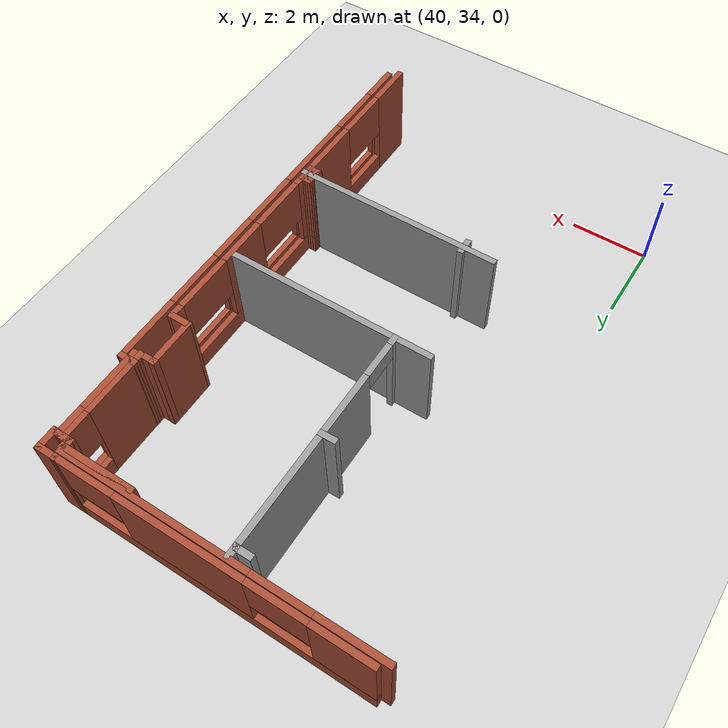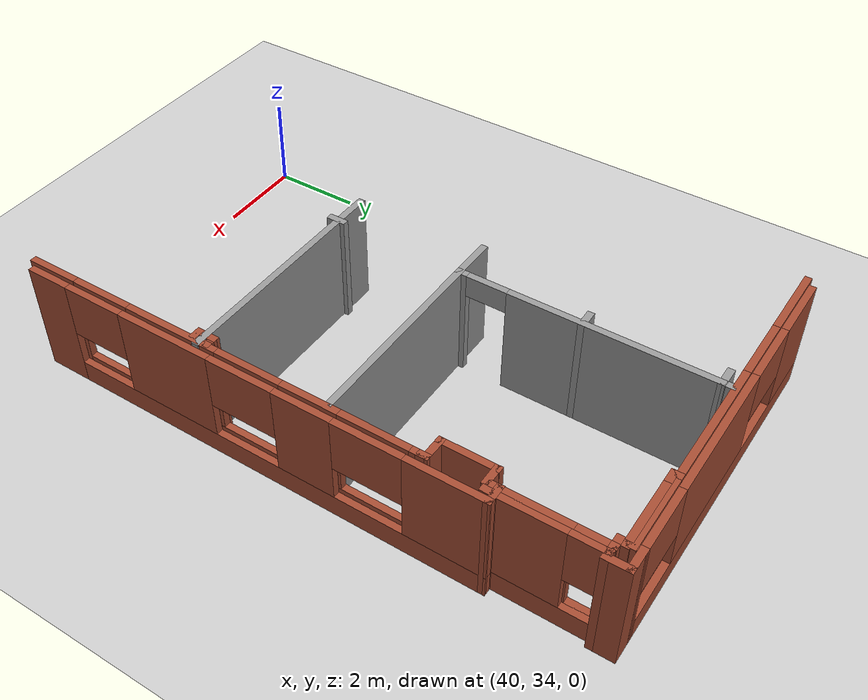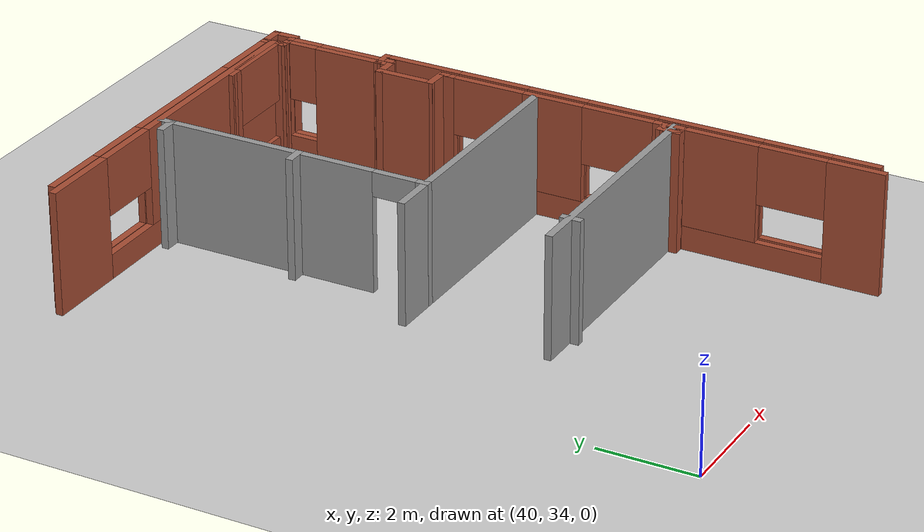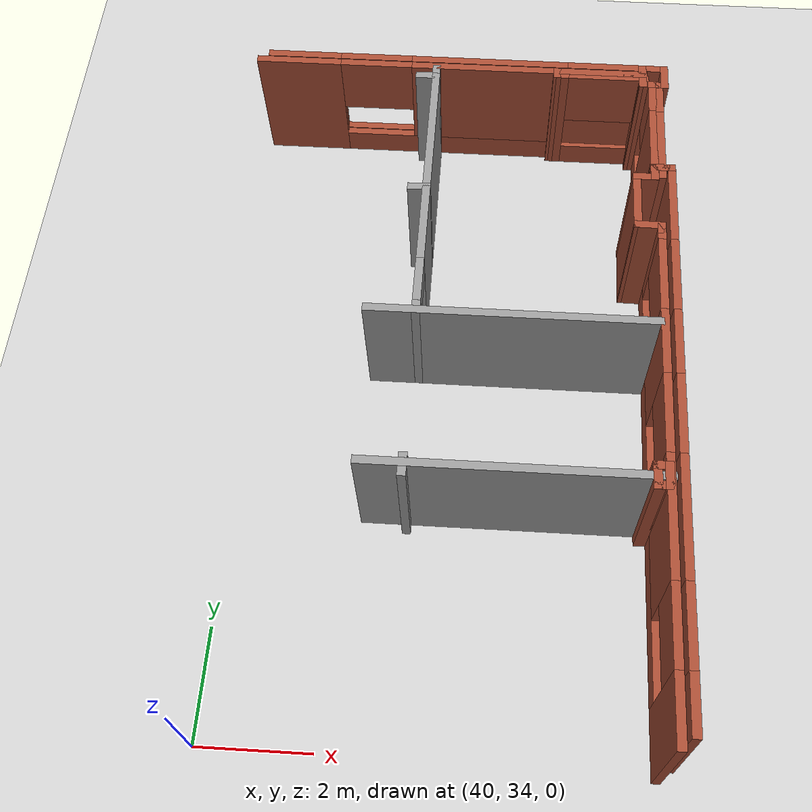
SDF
<sdf version="1.6">
 <world name="default">
  <model name="ground_plane">
   <static>1</static>
   <link name="link">
    <collision name="collision">
     <geometry><plane><normal>0 0 1</normal><size>100 100</size></plane></geometry>
     <surface><friction><ode><mu>100</mu><mu2>50</mu2></ode></friction></surface>
    </collision>
    <visual name="visual">
     <cast_shadows>0</cast_shadows>
     <geometry><plane><normal>0 0 1</normal><size>100 100</size></plane></geometry>
     <material>
      <script><uri>file://media/materials/scripts/gazebo.material</uri><name>Gazebo/Grey</name></script>
     </material>
    </visual>
   </link>
  </model>
  <model name="CVSSP">
   <pose>23.8714 24.094 0 0 -0 0</pose>
   <link name="Wall_246">
    <pose>23.6539 14.3878 0 0 -0 1.5708</pose>
    <visual name="Wall_246_Visual_0">
     <pose>-4.04048 0 1.25 0 -0 0</pose>
     <geometry><box><size>1.16905 0.15 2.5</size></box></geometry>
     <material>
      <script><uri>file://media/materials/scripts/gazebo.material</uri><name>Gazebo/Bricks</name></script>
      <ambient>1 1 1 1</ambient>
     </material>
    </visual>
    <collision name="Wall_246_Collision_0">
     <geometry><box><size>1.16905 0.15 2.5</size></box></geometry>
     <pose>-4.04048 0 1.25 0 -0 0</pose>
    </collision>
    <visual name="Wall_246_Visual_1">
     <pose>0.584524 0 0.25 0 -0 0</pose>
     <geometry><box><size>8.08095 0.15 0.5</size></box></geometry>
     <material>
      <script><uri>file://media/materials/scripts/gazebo.material</uri><name>Gazebo/Bricks</name></script>
      <ambient>1 1 1 1</ambient>
     </material>
    </visual>
    <collision name="Wall_246_Collision_1">
     <geometry><box><size>8.08095 0.15 0.5</size></box></geometry>
     <pose>0.584524 0 0.25 0 -0 0</pose>
    </collision>
    <visual name="Wall_246_Visual_2">
     <pose>-0.997265 0 1.5 0 -0 0</pose>
     <geometry><box><size>2.17318 0.15 2</size></box></geometry>
     <material>
      <script><uri>file://media/materials/scripts/gazebo.material</uri><name>Gazebo/Bricks</name></script>
      <ambient>1 1 1 1</ambient>
     </material>
    </visual>
    <collision name="Wall_246_Collision_2">
     <geometry><box><size>2.17318 0.15 2</size></box></geometry>
     <pose>-0.997265 0 1.5 0 -0 0</pose>
    </collision>
    <visual name="Wall_246_Visual_3">
     <pose>2.21429 0 1.5 0 -0 0</pose>
     <geometry><box><size>1.28036 0.15 2</size></box></geometry>
     <material>
      <script><uri>file://media/materials/scripts/gazebo.material</uri><name>Gazebo/Bricks</name></script>
      <ambient>1 1 1 1</ambient>
     </material>
    </visual>
    <collision name="Wall_246_Collision_3">
     <geometry><box><size>1.28036 0.15 2</size></box></geometry>
     <pose>2.21429 0 1.5 0 -0 0</pose>
    </collision>
    <visual name="Wall_246_Visual_4">
     <pose>4.48646 0 1.5 0 -0 0</pose>
     <geometry><box><size>0.27708 0.15 2</size></box></geometry>
     <material>
      <script><uri>file://media/materials/scripts/gazebo.material</uri><name>Gazebo/Bricks</name></script>
      <ambient>1 1 1 1</ambient>
     </material>
    </visual>
    <collision name="Wall_246_Collision_4">
     <geometry><box><size>0.27708 0.15 2</size></box></geometry>
     <pose>4.48646 0 1.5 0 -0 0</pose>
    </collision>
    <visual name="Wall_246_Visual_5">
     <pose>-2.7699 0 1.9 0 -0 0</pose>
     <geometry><box><size>1.3721 0.15 1.2</size></box></geometry>
     <material>
      <script><uri>file://media/materials/scripts/gazebo.material</uri><name>Gazebo/Bricks</name></script>
      <ambient>1 1 1 1</ambient>
     </material>
    </visual>
    <collision name="Wall_246_Collision_5">
     <geometry><box><size>1.3721 0.15 1.2</size></box></geometry>
     <pose>-2.7699 0 1.9 0 -0 0</pose>
    </collision>
    <visual name="Wall_246_Visual_6">
     <pose>0.831717 0 1.9 0 -0 0</pose>
     <geometry><box><size>1.48478 0.15 1.2</size></box></geometry>
     <material>
      <script><uri>file://media/materials/scripts/gazebo.material</uri><name>Gazebo/Bricks</name></script>
      <ambient>1 1 1 1</ambient>
     </material>
    </visual>
    <collision name="Wall_246_Collision_6">
     <geometry><box><size>1.48478 0.15 1.2</size></box></geometry>
     <pose>0.831717 0 1.9 0 -0 0</pose>
    </collision>
    <visual name="Wall_246_Visual_7">
     <pose>3.60119 0 1.9 0 -0 0</pose>
     <geometry><box><size>1.49345 0.15 1.2</size></box></geometry>
     <material>
      <script><uri>file://media/materials/scripts/gazebo.material</uri><name>Gazebo/Bricks</name></script>
      <ambient>1 1 1 1</ambient>
     </material>
    </visual>
    <collision name="Wall_246_Collision_7">
     <geometry><box><size>1.49345 0.15 1.2</size></box></geometry>
     <pose>3.60119 0 1.9 0 -0 0</pose>
    </collision>
   </link>
   <link name="Wall_248">
    <pose>23.8767 15.2054 0 0 -0 1.57026</pose>
    <visual name="Wall_248_Visual_0">
     <pose>-4.76522 0 1.25 0 -0 0</pose>
     <geometry><box><size>0.983202 0.15 2.5</size></box></geometry>
     <material>
      <script><uri>file://media/materials/scripts/gazebo.material</uri><name>Gazebo/Bricks</name></script>
      <ambient>1 1 1 1</ambient>
     </material>
    </visual>
    <collision name="Wall_248_Collision_0">
     <geometry><box><size>0.983202 0.15 2.5</size></box></geometry>
     <pose>-4.76522 0 1.25 0 -0 0</pose>
    </collision>
    <visual name="Wall_248_Visual_1">
     <pose>0.491601 0 0.25 0 -0 0</pose>
     <geometry><box><size>9.53043 0.15 0.5</size></box></geometry>
     <material>
      <script><uri>file://media/materials/scripts/gazebo.material</uri><name>Gazebo/Bricks</name></script>
      <ambient>1 1 1 1</ambient>
     </material>
    </visual>
    <collision name="Wall_248_Collision_1">
     <geometry><box><size>9.53043 0.15 0.5</size></box></geometry>
     <pose>0.491601 0 0.25 0 -0 0</pose>
    </collision>
    <visual name="Wall_248_Visual_2">
     <pose>-1.81497 0 1.5 0 -0 0</pose>
     <geometry><box><size>2.15587 0.15 2</size></box></geometry>
     <material>
      <script><uri>file://media/materials/scripts/gazebo.material</uri><name>Gazebo/Bricks</name></script>
      <ambient>1 1 1 1</ambient>
     </material>
    </visual>
    <collision name="Wall_248_Collision_2">
     <geometry><box><size>2.15587 0.15 2</size></box></geometry>
     <pose>-1.81497 0 1.5 0 -0 0</pose>
    </collision>
    <visual name="Wall_248_Visual_3">
     <pose>1.3966 0 1.5 0 -0 0</pose>
     <geometry><box><size>1.28045 0.15 2</size></box></geometry>
     <material>
      <script><uri>file://media/materials/scripts/gazebo.material</uri><name>Gazebo/Bricks</name></script>
      <ambient>1 1 1 1</ambient>
     </material>
    </visual>
    <collision name="Wall_248_Collision_3">
     <geometry><box><size>1.28045 0.15 2</size></box></geometry>
     <pose>1.3966 0 1.5 0 -0 0</pose>
    </collision>
    <visual name="Wall_248_Visual_4">
     <pose>4.39355 0 1.5 0 -0 0</pose>
     <geometry><box><size>1.72654 0.15 2</size></box></geometry>
     <material>
      <script><uri>file://media/materials/scripts/gazebo.material</uri><name>Gazebo/Bricks</name></script>
      <ambient>1 1 1 1</ambient>
     </material>
    </visual>
    <collision name="Wall_248_Collision_4">
     <geometry><box><size>1.72654 0.15 2</size></box></geometry>
     <pose>4.39355 0 1.5 0 -0 0</pose>
    </collision>
    <visual name="Wall_248_Visual_5">
     <pose>-3.58326 0 1.9 0 -0 0</pose>
     <geometry><box><size>1.38071 0.15 1.2</size></box></geometry>
     <material>
      <script><uri>file://media/materials/scripts/gazebo.material</uri><name>Gazebo/Bricks</name></script>
      <ambient>1 1 1 1</ambient>
     </material>
    </visual>
    <collision name="Wall_248_Collision_5">
     <geometry><box><size>1.38071 0.15 1.2</size></box></geometry>
     <pose>-3.58326 0 1.9 0 -0 0</pose>
    </collision>
    <visual name="Wall_248_Visual_6">
     <pose>0.009668 0 1.9 0 -0 0</pose>
     <geometry><box><size>1.49341 0.15 1.2</size></box></geometry>
     <material>
      <script><uri>file://media/materials/scripts/gazebo.material</uri><name>Gazebo/Bricks</name></script>
      <ambient>1 1 1 1</ambient>
     </material>
    </visual>
    <collision name="Wall_248_Collision_6">
     <geometry><box><size>1.49341 0.15 1.2</size></box></geometry>
     <pose>0.009668 0 1.9 0 -0 0</pose>
    </collision>
    <visual name="Wall_248_Visual_7">
     <pose>2.78355 0 1.9 0 -0 0</pose>
     <geometry><box><size>1.49345 0.15 1.2</size></box></geometry>
     <material>
      <script><uri>file://media/materials/scripts/gazebo.material</uri><name>Gazebo/Bricks</name></script>
      <ambient>1 1 1 1</ambient>
     </material>
    </visual>
    <collision name="Wall_248_Collision_7">
     <geometry><box><size>1.49345 0.15 1.2</size></box></geometry>
     <pose>2.78355 0 1.9 0 -0 0</pose>
    </collision>
   </link>
   <link name="Wall_249">
    <collision name="Wall_249_Collision">
     <geometry><box><size>0.472183 0.15 2.5</size></box></geometry>
     <pose>0 0 1.25 0 -0 0</pose>
    </collision>
    <visual name="Wall_249_Visual">
     <pose>0 0 1.25 0 -0 0</pose>
     <geometry><box><size>0.472183 0.15 2.5</size></box></geometry>
     <material>
      <script><uri>file://media/materials/scripts/gazebo.material</uri><name>Gazebo/Bricks</name></script>
      <ambient>1 1 1 1</ambient>
     </material>
    </visual>
    <pose>23.7184 20.3872 0 0 -0 3.14159</pose>
   </link>
   <link name="Wall_251">
    <collision name="Wall_251_Collision">
     <geometry><box><size>0.25 0.15 2.5</size></box></geometry>
     <pose>0 0 1.25 0 -0 0</pose>
    </collision>
    <visual name="Wall_251_Visual">
     <pose>0 0 1.25 0 -0 0</pose>
     <geometry><box><size>0.25 0.15 2.5</size></box></geometry>
     <material>
      <script><uri>file://media/materials/scripts/gazebo.material</uri><name>Gazebo/Bricks</name></script>
      <ambient>1 1 1 1</ambient>
     </material>
    </visual>
    <pose>23.6539 18.9878 0 0 -0 1.5708</pose>
   </link>
   <link name="Wall_252">
    <collision name="Wall_252_Collision">
     <geometry><box><size>0.578729 0.15 2.5</size></box></geometry>
     <pose>0 0 1.25 0 -0 0</pose>
    </collision>
    <visual name="Wall_252_Visual">
     <pose>0 0 1.25 0 -0 0</pose>
     <geometry><box><size>0.578729 0.15 2.5</size></box></geometry>
     <material>
      <script><uri>file://media/materials/scripts/gazebo.material</uri><name>Gazebo/Bricks</name></script>
      <ambient>1 1 1 1</ambient>
     </material>
    </visual>
    <pose>23.4395 19.0409 0 0 -0 3.12698</pose>
   </link>
   <link name="Wall_253">
    <collision name="Wall_253_Collision">
     <geometry><box><size>1.26972 0.15 2.5</size></box></geometry>
     <pose>0 0 1.25 0 -0 0</pose>
    </collision>
    <visual name="Wall_253_Visual">
     <pose>0 0 1.25 0 -0 0</pose>
     <geometry><box><size>1.26972 0.15 2.5</size></box></geometry>
     <material>
      <script><uri>file://media/materials/scripts/gazebo.material</uri><name>Gazebo/Bricks</name></script>
      <ambient>1 1 1 1</ambient>
     </material>
    </visual>
    <pose>23.2252 19.6039 0 0 -0 1.5708</pose>
   </link>
   <link name="Wall_254">
    <collision name="Wall_254_Collision">
     <geometry><box><size>0.488706 0.15 2.5</size></box></geometry>
     <pose>0 0 1.25 0 -0 0</pose>
    </collision>
    <visual name="Wall_254_Visual">
     <pose>0 0 1.25 0 -0 0</pose>
     <geometry><box><size>0.488706 0.15 2.5</size></box></geometry>
     <material>
      <script><uri>file://media/materials/scripts/gazebo.material</uri><name>Gazebo/Bricks</name></script>
      <ambient>1 1 1 1</ambient>
     </material>
    </visual>
    <pose>23.3945 20.1571 0 0 0 -0.000206</pose>
   </link>
   <link name="Wall_256">
    <collision name="Wall_256_Collision">
     <geometry><box><size>0.373652 0.15 2.5</size></box></geometry>
     <pose>0 0 1.25 0 -0 0</pose>
    </collision>
    <visual name="Wall_256_Visual">
     <pose>0 0 1.25 0 -0 0</pose>
     <geometry><box><size>0.373652 0.15 2.5</size></box></geometry>
     <material>
      <script><uri>file://media/materials/scripts/gazebo.material</uri><name>Gazebo/Bricks</name></script>
      <ambient>1 1 1 1</ambient>
     </material>
    </visual>
    <pose>23.5606 20.2755 0 0 -0 1.6002</pose>
   </link>
   <link name="Wall_260">
    <pose>23.5639 21.3143 0 0 -0 1.5708</pose>
    <visual name="Wall_260_Visual_0">
     <pose>-0.373491 0 1.25 0 -0 0</pose>
     <geometry><box><size>1.70433 0.15 2.5</size></box></geometry>
     <material>
      <script><uri>file://media/materials/scripts/gazebo.material</uri><name>Gazebo/Bricks</name></script>
      <ambient>1 1 1 1</ambient>
     </material>
    </visual>
    <collision name="Wall_260_Collision_0">
     <geometry><box><size>1.70433 0.15 2.5</size></box></geometry>
     <pose>-0.373491 0 1.25 0 -0 0</pose>
    </collision>
    <visual name="Wall_260_Visual_1">
     <pose>0.852167 0 0.25 0 -0 0</pose>
     <geometry><box><size>0.746982 0.15 0.5</size></box></geometry>
     <material>
      <script><uri>file://media/materials/scripts/gazebo.material</uri><name>Gazebo/Bricks</name></script>
      <ambient>1 1 1 1</ambient>
     </material>
    </visual>
    <collision name="Wall_260_Collision_1">
     <geometry><box><size>0.746982 0.15 0.5</size></box></geometry>
     <pose>0.852167 0 0.25 0 -0 0</pose>
    </collision>
    <visual name="Wall_260_Visual_2">
     <pose>1.14815 0 1.5 0 -0 0</pose>
     <geometry><box><size>0.155018 0.15 2</size></box></geometry>
     <material>
      <script><uri>file://media/materials/scripts/gazebo.material</uri><name>Gazebo/Bricks</name></script>
      <ambient>1 1 1 1</ambient>
     </material>
    </visual>
    <collision name="Wall_260_Collision_2">
     <geometry><box><size>0.155018 0.15 2</size></box></geometry>
     <pose>1.14815 0 1.5 0 -0 0</pose>
    </collision>
    <visual name="Wall_260_Visual_3">
     <pose>0.774658 0 1.9 0 -0 0</pose>
     <geometry><box><size>0.591964 0.15 1.2</size></box></geometry>
     <material>
      <script><uri>file://media/materials/scripts/gazebo.material</uri><name>Gazebo/Bricks</name></script>
      <ambient>1 1 1 1</ambient>
     </material>
    </visual>
    <collision name="Wall_260_Collision_3">
     <geometry><box><size>0.591964 0.15 1.2</size></box></geometry>
     <pose>0.774658 0 1.9 0 -0 0</pose>
    </collision>
   </link>
   <link name="Wall_261">
    <collision name="Wall_261_Collision">
     <geometry><box><size>0.320954 0.15 2.5</size></box></geometry>
     <pose>0 0 1.25 0 -0 0</pose>
    </collision>
    <visual name="Wall_261_Visual">
     <pose>0 0 1.25 0 -0 0</pose>
     <geometry><box><size>0.320954 0.15 2.5</size></box></geometry>
     <material>
      <script><uri>file://media/materials/scripts/gazebo.material</uri><name>Gazebo/Bricks</name></script>
      <ambient>1 1 1 1</ambient>
     </material>
    </visual>
    <pose>23.4784 22.465 0 0 -0 3.14159</pose>
   </link>
   <link name="Wall_262">
    <collision name="Wall_262_Collision">
     <geometry><box><size>0.564287 0.15 2.5</size></box></geometry>
     <pose>0 0 1.25 0 -0 0</pose>
    </collision>
    <visual name="Wall_262_Visual">
     <pose>0 0 1.25 0 -0 0</pose>
     <geometry><box><size>0.564287 0.15 2.5</size></box></geometry>
     <material>
      <script><uri>file://media/materials/scripts/gazebo.material</uri><name>Gazebo/Bricks</name></script>
      <ambient>1 1 1 1</ambient>
     </material>
    </visual>
    <pose>23.3897 22.6721 0 0 -0 1.58667</pose>
   </link>
   <link name="Wall_263">
    <collision name="Wall_263_Collision">
     <geometry><box><size>0.577386 0.15 2.5</size></box></geometry>
     <pose>0 0 1.25 0 -0 0</pose>
    </collision>
    <visual name="Wall_263_Visual">
     <pose>0 0 1.25 0 -0 0</pose>
     <geometry><box><size>0.577386 0.15 2.5</size></box></geometry>
     <material>
      <script><uri>file://media/materials/scripts/gazebo.material</uri><name>Gazebo/Bricks</name></script>
      <ambient>1 1 1 1</ambient>
     </material>
    </visual>
    <pose>23.6001 22.8792 0 0 -0 0</pose>
   </link>
   <link name="Wall_264">
    <collision name="Wall_264_Collision">
     <geometry><box><size>0.577386 0.15 2.5</size></box></geometry>
     <pose>0 0 1.25 0 -0 0</pose>
    </collision>
    <visual name="Wall_264_Visual">
     <pose>0 0 1.25 0 -0 0</pose>
     <geometry><box><size>0.577386 0.15 2.5</size></box></geometry>
     <material>
      <script><uri>file://media/materials/scripts/gazebo.material</uri><name>Gazebo/Bricks</name></script>
      <ambient>1 1 1 1</ambient>
     </material>
    </visual>
    <pose>23.8138 22.6655 0 0 0 -1.5708</pose>
   </link>
   <link name="Wall_265">
    <collision name="Wall_265_Collision">
     <geometry><box><size>0.262549 0.15 2.5</size></box></geometry>
     <pose>0 0 1.25 0 -0 0</pose>
    </collision>
    <visual name="Wall_265_Visual">
     <pose>0 0 1.25 0 -0 0</pose>
     <geometry><box><size>0.262549 0.15 2.5</size></box></geometry>
     <material>
      <script><uri>file://media/materials/scripts/gazebo.material</uri><name>Gazebo/Bricks</name></script>
      <ambient>1 1 1 1</ambient>
     </material>
    </visual>
    <pose>23.7579 22.4518 0 0 -0 3.14159</pose>
   </link>
   <link name="Wall_266">
    <pose>23.702 21.3275 0 0 0 -1.5708</pose>
    <visual name="Wall_266_Visual_0">
     <pose>-1.13276 0 1.25 0 -0 0</pose>
     <geometry><box><size>0.133194 0.15 2.5</size></box></geometry>
     <material>
      <script><uri>file://media/materials/scripts/gazebo.material</uri><name>Gazebo/Bricks</name></script>
      <ambient>1 1 1 1</ambient>
     </material>
    </visual>
    <collision name="Wall_266_Collision_0">
     <geometry><box><size>0.133194 0.15 2.5</size></box></geometry>
     <pose>-1.13276 0 1.25 0 -0 0</pose>
    </collision>
    <visual name="Wall_266_Visual_1">
     <pose>0.066597 0 0.25 0 -0 0</pose>
     <geometry><box><size>2.26551 0.15 0.5</size></box></geometry>
     <material>
      <script><uri>file://media/materials/scripts/gazebo.material</uri><name>Gazebo/Bricks</name></script>
      <ambient>1 1 1 1</ambient>
     </material>
    </visual>
    <collision name="Wall_266_Collision_1">
     <geometry><box><size>2.26551 0.15 0.5</size></box></geometry>
     <pose>0.066597 0 0.25 0 -0 0</pose>
    </collision>
    <visual name="Wall_266_Visual_2">
     <pose>0.384249 0 1.5 0 -0 0</pose>
     <geometry><box><size>1.63021 0.15 2</size></box></geometry>
     <material>
      <script><uri>file://media/materials/scripts/gazebo.material</uri><name>Gazebo/Bricks</name></script>
      <ambient>1 1 1 1</ambient>
     </material>
    </visual>
    <collision name="Wall_266_Collision_2">
     <geometry><box><size>1.63021 0.15 2</size></box></geometry>
     <pose>0.384249 0 1.5 0 -0 0</pose>
    </collision>
    <visual name="Wall_266_Visual_3">
     <pose>-0.748507 0 1.9 0 -0 0</pose>
     <geometry><box><size>0.635305 0.15 1.2</size></box></geometry>
     <material>
      <script><uri>file://media/materials/scripts/gazebo.material</uri><name>Gazebo/Bricks</name></script>
      <ambient>1 1 1 1</ambient>
     </material>
    </visual>
    <collision name="Wall_266_Collision_3">
     <geometry><box><size>0.635305 0.15 1.2</size></box></geometry>
     <pose>-0.748507 0 1.9 0 -0 0</pose>
    </collision>
   </link>
   <link name="Wall_268">
    <pose>19.7114 22.8792 0 0 -0 3.14159</pose>
    <visual name="Wall_268_Visual_0">
     <pose>-3.69493 0 1.25 0 -0 0</pose>
     <geometry><box><size>0.110141 0.15 2.5</size></box></geometry>
     <material>
      <script><uri>file://media/materials/scripts/gazebo.material</uri><name>Gazebo/Bricks</name></script>
      <ambient>1 1 1 1</ambient>
     </material>
    </visual>
    <collision name="Wall_268_Collision_0">
     <geometry><box><size>0.110141 0.15 2.5</size></box></geometry>
     <pose>-3.69493 0 1.25 0 -0 0</pose>
    </collision>
    <visual name="Wall_268_Visual_1">
     <pose>0.05507 0 0.25 0 -0 0</pose>
     <geometry><box><size>7.38986 0.15 0.5</size></box></geometry>
     <material>
      <script><uri>file://media/materials/scripts/gazebo.material</uri><name>Gazebo/Bricks</name></script>
      <ambient>1 1 1 1</ambient>
     </material>
    </visual>
    <collision name="Wall_268_Collision_1">
     <geometry><box><size>7.38986 0.15 0.5</size></box></geometry>
     <pose>0.05507 0 0.25 0 -0 0</pose>
    </collision>
    <visual name="Wall_268_Visual_2">
     <pose>-0.658919 0 1.5 0 -0 0</pose>
     <geometry><box><size>3.09633 0.15 2</size></box></geometry>
     <material>
      <script><uri>file://media/materials/scripts/gazebo.material</uri><name>Gazebo/Bricks</name></script>
      <ambient>1 1 1 1</ambient>
     </material>
    </visual>
    <collision name="Wall_268_Collision_2">
     <geometry><box><size>3.09633 0.15 2</size></box></geometry>
     <pose>-0.658919 0 1.5 0 -0 0</pose>
    </collision>
    <visual name="Wall_268_Visual_3">
     <pose>3.02537 0 1.5 0 -0 0</pose>
     <geometry><box><size>1.44926 0.15 2</size></box></geometry>
     <material>
      <script><uri>file://media/materials/scripts/gazebo.material</uri><name>Gazebo/Bricks</name></script>
      <ambient>1 1 1 1</ambient>
     </material>
    </visual>
    <collision name="Wall_268_Collision_3">
     <geometry><box><size>1.44926 0.15 2</size></box></geometry>
     <pose>3.02537 0 1.5 0 -0 0</pose>
    </collision>
    <visual name="Wall_268_Visual_4">
     <pose>-2.92347 0 1.9 0 -0 0</pose>
     <geometry><box><size>1.43278 0.15 1.2</size></box></geometry>
     <material>
      <script><uri>file://media/materials/scripts/gazebo.material</uri><name>Gazebo/Bricks</name></script>
      <ambient>1 1 1 1</ambient>
     </material>
    </visual>
    <collision name="Wall_268_Collision_4">
     <geometry><box><size>1.43278 0.15 1.2</size></box></geometry>
     <pose>-2.92347 0 1.9 0 -0 0</pose>
    </collision>
    <visual name="Wall_268_Visual_5">
     <pose>1.59499 0 1.9 0 -0 0</pose>
     <geometry><box><size>1.41149 0.15 1.2</size></box></geometry>
     <material>
      <script><uri>file://media/materials/scripts/gazebo.material</uri><name>Gazebo/Bricks</name></script>
      <ambient>1 1 1 1</ambient>
     </material>
    </visual>
    <collision name="Wall_268_Collision_5">
     <geometry><box><size>1.41149 0.15 1.2</size></box></geometry>
     <pose>1.59499 0 1.9 0 -0 0</pose>
    </collision>
   </link>
   <link name="Wall_273">
    <pose>19.6122 22.7148 0 0 -0 0</pose>
    <visual name="Wall_273_Visual_0">
     <pose>-3.02728 0 1.25 0 -0 0</pose>
     <geometry><box><size>1.67003 0.15 2.5</size></box></geometry>
     <material>
      <script><uri>file://media/materials/scripts/gazebo.material</uri><name>Gazebo/Bricks</name></script>
      <ambient>1 1 1 1</ambient>
     </material>
    </visual>
    <collision name="Wall_273_Collision_0">
     <geometry><box><size>1.67003 0.15 2.5</size></box></geometry>
     <pose>-3.02728 0 1.25 0 -0 0</pose>
    </collision>
    <visual name="Wall_273_Visual_1">
     <pose>0.835017 0 0.25 0 -0 0</pose>
     <geometry><box><size>6.05455 0.15 0.5</size></box></geometry>
     <material>
      <script><uri>file://media/materials/scripts/gazebo.material</uri><name>Gazebo/Bricks</name></script>
      <ambient>1 1 1 1</ambient>
     </material>
    </visual>
    <collision name="Wall_273_Collision_1">
     <geometry><box><size>6.05455 0.15 0.5</size></box></geometry>
     <pose>0.835017 0 0.25 0 -0 0</pose>
    </collision>
    <visual name="Wall_273_Visual_2">
     <pose>1.54076 0 1.5 0 -0 0</pose>
     <geometry><box><size>4.64306 0.15 2</size></box></geometry>
     <material>
      <script><uri>file://media/materials/scripts/gazebo.material</uri><name>Gazebo/Bricks</name></script>
      <ambient>1 1 1 1</ambient>
     </material>
    </visual>
    <collision name="Wall_273_Collision_2">
     <geometry><box><size>4.64306 0.15 2</size></box></geometry>
     <pose>1.54076 0 1.5 0 -0 0</pose>
    </collision>
    <visual name="Wall_273_Visual_3">
     <pose>-1.48652 0 1.9 0 -0 0</pose>
     <geometry><box><size>1.41149 0.15 1.2</size></box></geometry>
     <material>
      <script><uri>file://media/materials/scripts/gazebo.material</uri><name>Gazebo/Bricks</name></script>
      <ambient>1 1 1 1</ambient>
     </material>
    </visual>
    <collision name="Wall_273_Collision_3">
     <geometry><box><size>1.41149 0.15 1.2</size></box></geometry>
     <pose>-1.48652 0 1.9 0 -0 0</pose>
    </collision>
   </link>
   <link name="Wall_275">
    <collision name="Wall_275_Collision">
     <geometry><box><size>0.25 0.15 2.5</size></box></geometry>
     <pose>0 0 1.25 0 -0 0</pose>
    </collision>
    <visual name="Wall_275_Visual">
     <pose>0 0 1.25 0 -0 0</pose>
     <geometry><box><size>0.25 0.15 2.5</size></box></geometry>
     <material>
      <script><uri>file://media/materials/scripts/gazebo.material</uri><name>Gazebo/Bricks</name></script>
      <ambient>1 1 1 1</ambient>
     </material>
    </visual>
    <pose>21.7097 22.6648 0 0 0 -1.5708</pose>
   </link>
   <link name="Wall_276">
    <pose>22.5711 22.6155 0 0 -0 0.000797</pose>
    <visual name="Wall_276_Visual_0">
     <pose>-0.783646 0 1.25 0 -0 0</pose>
     <geometry><box><size>0.3054 0.15 2.5</size></box></geometry>
     <material>
      <script><uri>file://media/materials/scripts/gazebo.material</uri><name>Gazebo/Bricks</name></script>
      <ambient>1 1 1 1</ambient>
     </material>
    </visual>
    <collision name="Wall_276_Collision_0">
     <geometry><box><size>0.3054 0.15 2.5</size></box></geometry>
     <pose>-0.783646 0 1.25 0 -0 0</pose>
    </collision>
    <visual name="Wall_276_Visual_1">
     <pose>0.1527 0 0.25 0 -0 0</pose>
     <geometry><box><size>1.56729 0.15 0.5</size></box></geometry>
     <material>
      <script><uri>file://media/materials/scripts/gazebo.material</uri><name>Gazebo/Bricks</name></script>
      <ambient>1 1 1 1</ambient>
     </material>
    </visual>
    <collision name="Wall_276_Collision_1">
     <geometry><box><size>1.56729 0.15 0.5</size></box></geometry>
     <pose>0.1527 0 0.25 0 -0 0</pose>
    </collision>
    <visual name="Wall_276_Visual_2">
     <pose>0.860427 0 1.5 0 -0 0</pose>
     <geometry><box><size>0.15184 0.15 2</size></box></geometry>
     <material>
      <script><uri>file://media/materials/scripts/gazebo.material</uri><name>Gazebo/Bricks</name></script>
      <ambient>1 1 1 1</ambient>
     </material>
    </visual>
    <collision name="Wall_276_Collision_2">
     <geometry><box><size>0.15184 0.15 2</size></box></geometry>
     <pose>0.860427 0 1.5 0 -0 0</pose>
    </collision>
    <visual name="Wall_276_Visual_3">
     <pose>0.07678 0 1.9 0 -0 0</pose>
     <geometry><box><size>1.41545 0.15 1.2</size></box></geometry>
     <material>
      <script><uri>file://media/materials/scripts/gazebo.material</uri><name>Gazebo/Bricks</name></script>
      <ambient>1 1 1 1</ambient>
     </material>
    </visual>
    <collision name="Wall_276_Collision_3">
     <geometry><box><size>1.41545 0.15 1.2</size></box></geometry>
     <pose>0.07678 0 1.9 0 -0 0</pose>
    </collision>
   </link>
   <link name="Wall_343">
    <collision name="Wall_343_Collision">
     <geometry><box><size>5.25 0.15 2.5</size></box></geometry>
     <pose>0 0 1.25 0 -0 0</pose>
    </collision>
    <visual name="Wall_343_Visual">
     <pose>0 0 1.25 0 -0 0</pose>
     <geometry><box><size>5.25 0.15 2.5</size></box></geometry>
     <material>
      <script><uri>file://media/materials/scripts/gazebo.material</uri><name>Gazebo/Grey</name></script>
      <ambient>0.588235 0.588235 0.588235 1</ambient>
     </material>
    </visual>
    <pose>21.0172 16.981 0 0 -0 0</pose>
   </link>
   <link name="Wall_345">
    <pose>19.3268 19.7148 0 0 -0 1.5708</pose>
    <visual name="Wall_345_Visual_0">
     <pose>-2.67544 0 1.25 0 -0 0</pose>
     <geometry><box><size>0.266868 0.15 2.5</size></box></geometry>
     <material>
      <script><uri>file://media/materials/scripts/gazebo.material</uri><name>Gazebo/Grey</name></script>
      <ambient>0.588235 0.588235 0.588235 1</ambient>
     </material>
    </visual>
    <collision name="Wall_345_Collision_0">
     <geometry><box><size>0.266868 0.15 2.5</size></box></geometry>
     <pose>-2.67544 0 1.25 0 -0 0</pose>
    </collision>
    <visual name="Wall_345_Visual_1">
     <pose>0.583434 0 1.25 0 -0 0</pose>
     <geometry><box><size>4.45088 0.15 2.5</size></box></geometry>
     <material>
      <script><uri>file://media/materials/scripts/gazebo.material</uri><name>Gazebo/Grey</name></script>
      <ambient>0.588235 0.588235 0.588235 1</ambient>
     </material>
    </visual>
    <collision name="Wall_345_Collision_1">
     <geometry><box><size>4.45088 0.15 2.5</size></box></geometry>
     <pose>0.583434 0 1.25 0 -0 0</pose>
    </collision>
    <visual name="Wall_345_Visual_2">
     <pose>-2.09201 0 2.25 0 -0 0</pose>
     <geometry><box><size>0.9 0.15 0.5</size></box></geometry>
     <material>
      <script><uri>file://media/materials/scripts/gazebo.material</uri><name>Gazebo/Grey</name></script>
      <ambient>0.588235 0.588235 0.588235 1</ambient>
     </material>
    </visual>
    <collision name="Wall_345_Collision_2">
     <geometry><box><size>0.9 0.15 0.5</size></box></geometry>
     <pose>-2.09201 0 2.25 0 -0 0</pose>
    </collision>
   </link>
   <link name="Wall_347">
    <collision name="Wall_347_Collision">
     <geometry><box><size>0.473042 0.15 2.5</size></box></geometry>
     <pose>0 0 1.25 0 -0 0</pose>
    </collision>
    <visual name="Wall_347_Visual">
     <pose>0 0 1.25 0 -0 0</pose>
     <geometry><box><size>0.473042 0.15 2.5</size></box></geometry>
     <material>
      <script><uri>file://media/materials/scripts/gazebo.material</uri><name>Gazebo/Grey</name></script>
      <ambient>1 1 1 1</ambient>
     </material>
    </visual>
    <pose>19.1653 22.4613 0 0 0 -3.13738</pose>
   </link>
   <link name="Wall_351">
    <collision name="Wall_351_Collision">
     <geometry><box><size>0.345897 0.15 2.5</size></box></geometry>
     <pose>0 0 1.25 0 -0 0</pose>
    </collision>
    <visual name="Wall_351_Visual">
     <pose>0 0 1.25 0 -0 0</pose>
     <geometry><box><size>0.345897 0.15 2.5</size></box></geometry>
     <material>
      <script><uri>file://media/materials/scripts/gazebo.material</uri><name>Gazebo/Grey</name></script>
      <ambient>1 1 1 1</ambient>
     </material>
    </visual>
    <pose>19.3264 22.5599 0 0 -0 1.57517</pose>
   </link>
   <link name="Wall_533">
    <collision name="Wall_533_Collision">
     <geometry><box><size>5.25 0.15 2.5</size></box></geometry>
     <pose>0 0 1.25 0 -0 0</pose>
    </collision>
    <visual name="Wall_533_Visual">
     <pose>0 0 1.25 0 -0 0</pose>
     <geometry><box><size>5.25 0.15 2.5</size></box></geometry>
     <material>
      <script><uri>file://media/materials/scripts/gazebo.material</uri><name>Gazebo/Grey</name></script>
      <ambient>0.588235 0.588235 0.588235 1</ambient>
     </material>
    </visual>
    <pose>21.1286 14.0544 0 0 -0 3.14159</pose>
   </link>
   <link name="Wall_669">
    <collision name="Wall_669_Collision">
     <geometry><box><size>0.429381 0.15 2.5</size></box></geometry>
     <pose>0 0 1.25 0 -0 0</pose>
    </collision>
    <visual name="Wall_669_Visual">
     <pose>0 0 1.25 0 -0 0</pose>
     <geometry><box><size>0.429381 0.15 2.5</size></box></geometry>
     <material>
      <script><uri>file://media/materials/scripts/gazebo.material</uri><name>Gazebo/Grey</name></script>
      <ambient>0.588235 0.588235 0.588235 1</ambient>
     </material>
    </visual>
    <pose>19.1886 19.6802 0 0 -0 0.023805</pose>
   </link>
   <link name="Wall_674">
    <collision name="Wall_674_Collision">
     <geometry><box><size>0.426562 0.15 2.5</size></box></geometry>
     <pose>0 0 1.25 0 -0 0</pose>
    </collision>
    <visual name="Wall_674_Visual">
     <pose>0 0 1.25 0 -0 0</pose>
     <geometry><box><size>0.426562 0.15 2.5</size></box></geometry>
     <material>
      <script><uri>file://media/materials/scripts/gazebo.material</uri><name>Gazebo/Grey</name></script>
      <ambient>1 1 1 1</ambient>
     </material>
    </visual>
    <pose>19.3273 14.0191 0 0 0 -1.5708</pose>
   </link>
   <link name="Wall_678">
    <collision name="Wall_678_Collision">
     <geometry><box><size>0.341089 0.15 2.5</size></box></geometry>
     <pose>0 0 1.25 0 -0 0</pose>
    </collision>
    <visual name="Wall_678_Visual">
     <pose>0 0 1.25 0 -0 0</pose>
     <geometry><box><size>0.341089 0.15 2.5</size></box></geometry>
     <material>
      <script><uri>file://media/materials/scripts/gazebo.material</uri><name>Gazebo/Bricks</name></script>
      <ambient>1 1 1 1</ambient>
     </material>
    </visual>
    <pose>23.5361 14.2369 0 0 -0 3.13119</pose>
   </link>
   <link name="Wall_679">
    <collision name="Wall_679_Collision">
     <geometry><box><size>0.501988 0.15 2.5</size></box></geometry>
     <pose>0 0 1.25 0 -0 0</pose>
    </collision>
    <visual name="Wall_679_Visual">
     <pose>0 0 1.25 0 -0 0</pose>
     <geometry><box><size>0.501988 0.15 2.5</size></box></geometry>
     <material>
      <script><uri>file://media/materials/scripts/gazebo.material</uri><name>Gazebo/Bricks</name></script>
      <ambient>1 1 1 1</ambient>
     </material>
    </visual>
    <pose>23.4405 14.0619 0 0 0 -1.5708</pose>
   </link>
   <link name="Wall_680">
    <collision name="Wall_680_Collision">
     <geometry><box><size>0.341145 0.15 2.5</size></box></geometry>
     <pose>0 0 1.25 0 -0 0</pose>
    </collision>
    <visual name="Wall_680_Visual">
     <pose>0 0 1.25 0 -0 0</pose>
     <geometry><box><size>0.341145 0.15 2.5</size></box></geometry>
     <material>
      <script><uri>file://media/materials/scripts/gazebo.material</uri><name>Gazebo/Bricks</name></script>
      <ambient>1 1 1 1</ambient>
     </material>
    </visual>
    <pose>23.5361 13.8859 0 0 -0 0</pose>
   </link>
   <link name="Wall_681">
    <collision name="Wall_681_Collision">
     <geometry><box><size>0.5 0.15 2.5</size></box></geometry>
     <pose>0 0 1.25 0 -0 0</pose>
    </collision>
    <visual name="Wall_681_Visual">
     <pose>0 0 1.25 0 -0 0</pose>
     <geometry><box><size>0.5 0.15 2.5</size></box></geometry>
     <material>
      <script><uri>file://media/materials/scripts/gazebo.material</uri><name>Gazebo/Bricks</name></script>
      <ambient>1 1 1 1</ambient>
     </material>
    </visual>
    <pose>23.6316 14.0609 0 0 -0 1.5708</pose>
   </link>
   <static>1</static>
  </model>
 </world>
</sdf>
